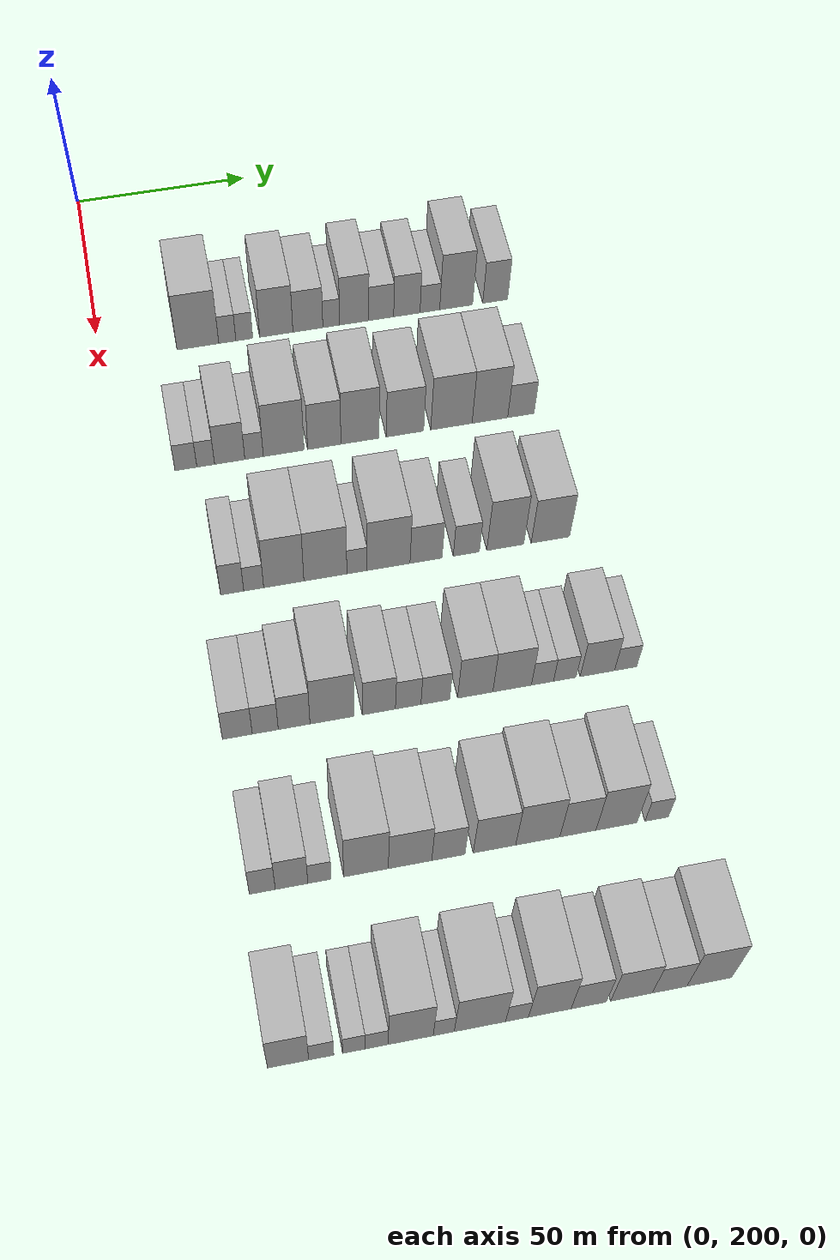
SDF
<sdf version="1.6">
 <world name="default">
  <model name="building_102">
   <static>1</static>
   <pose>50.0000 227.7388 0 0.000000 0.000000 0.000000</pose>
   <link name="link">
    <pose>0 0 12.00 0 0 0</pose>
    <collision name="collision"><geometry><box><size>20.0000 11.8908 24.0000</size></box></geometry></collision>
    <visual name="visual">
     <cast_shadows>0</cast_shadows>
     <geometry><box><size>20.0000 11.8908 24.0000</size></box></geometry>
     <material>
      <script>
       <uri>model://HANNAS_wall/materials/scripts</uri>
       <uri>model://HANNAS_wall/materials/textures</uri>
       <name>vrc/HANNAS_wall</name>
      </script>
     </material>
    </visual>
   </link>
  </model>
  <model name="building_103">
   <static>1</static>
   <pose>50.0000 236.1212 0 0.000000 0.000000 0.000000</pose>
   <link name="link">
    <pose>0 0 6.00 0 0 0</pose>
    <collision name="collision"><geometry><box><size>20.0000 4.8740 12.0000</size></box></geometry></collision>
    <visual name="visual">
     <cast_shadows>0</cast_shadows>
     <geometry><box><size>20.0000 4.8740 12.0000</size></box></geometry>
     <material>
      <script>
       <uri>model://HANNAS_wall/materials/scripts</uri>
       <uri>model://HANNAS_wall/materials/textures</uri>
       <name>vrc/HANNAS_wall</name>
      </script>
     </material>
    </visual>
   </link>
  </model>
  <model name="building_104">
   <static>1</static>
   <pose>50.0000 240.9679 0 0.000000 0.000000 0.000000</pose>
   <link name="link">
    <pose>0 0 6.00 0 0 0</pose>
    <collision name="collision"><geometry><box><size>20.0000 4.8193 12.0000</size></box></geometry></collision>
    <visual name="visual">
     <cast_shadows>0</cast_shadows>
     <geometry><box><size>20.0000 4.8193 12.0000</size></box></geometry>
     <material>
      <script>
       <uri>model://HANNAS_wall/materials/scripts</uri>
       <uri>model://HANNAS_wall/materials/textures</uri>
       <name>vrc/HANNAS_wall</name>
      </script>
     </material>
    </visual>
   </link>
  </model>
  <model name="building_105">
   <static>1</static>
   <pose>50.0000 250.1380 0 0.000000 0.000000 0.000000</pose>
   <link name="link">
    <pose>0 0 10.50 0 0 0</pose>
    <collision name="collision"><geometry><box><size>20.0000 9.5209 21.0000</size></box></geometry></collision>
    <visual name="visual">
     <cast_shadows>0</cast_shadows>
     <geometry><box><size>20.0000 9.5209 21.0000</size></box></geometry>
     <material>
      <script>
       <uri>model://HANNAS_wall/materials/scripts</uri>
       <uri>model://HANNAS_wall/materials/textures</uri>
       <name>vrc/HANNAS_wall</name>
      </script>
     </material>
    </visual>
   </link>
  </model>
  <model name="building_106">
   <static>1</static>
   <pose>50.0000 259.2080 0 0.000000 0.000000 0.000000</pose>
   <link name="link">
    <pose>0 0 9.00 0 0 0</pose>
    <collision name="collision"><geometry><box><size>20.0000 8.6191 18.0000</size></box></geometry></collision>
    <visual name="visual">
     <cast_shadows>0</cast_shadows>
     <geometry><box><size>20.0000 8.6191 18.0000</size></box></geometry>
     <material>
      <script>
       <uri>model://HANNAS_wall/materials/scripts</uri>
       <uri>model://HANNAS_wall/materials/textures</uri>
       <name>vrc/HANNAS_wall</name>
      </script>
     </material>
    </visual>
   </link>
  </model>
  <model name="building_107">
   <static>1</static>
   <pose>50.0000 265.9286 0 0.000000 0.000000 0.000000</pose>
   <link name="link">
    <pose>0 0 6.00 0 0 0</pose>
    <collision name="collision"><geometry><box><size>20.0000 4.8221 12.0000</size></box></geometry></collision>
    <visual name="visual">
     <cast_shadows>0</cast_shadows>
     <geometry><box><size>20.0000 4.8221 12.0000</size></box></geometry>
     <material>
      <script>
       <uri>model://HANNAS_wall/materials/scripts</uri>
       <uri>model://HANNAS_wall/materials/textures</uri>
       <name>vrc/HANNAS_wall</name>
      </script>
     </material>
    </visual>
   </link>
  </model>
  <model name="building_108">
   <static>1</static>
   <pose>50.0000 272.5588 0 0.000000 0.000000 0.000000</pose>
   <link name="link">
    <pose>0 0 10.50 0 0 0</pose>
    <collision name="collision"><geometry><box><size>20.0000 8.4382 21.0000</size></box></geometry></collision>
    <visual name="visual">
     <cast_shadows>0</cast_shadows>
     <geometry><box><size>20.0000 8.4382 21.0000</size></box></geometry>
     <material>
      <script>
       <uri>model://HANNAS_wall/materials/scripts</uri>
       <uri>model://HANNAS_wall/materials/textures</uri>
       <name>vrc/HANNAS_wall</name>
      </script>
     </material>
    </visual>
   </link>
  </model>
  <model name="building_109">
   <static>1</static>
   <pose>50.0000 280.4043 0 0.000000 0.000000 0.000000</pose>
   <link name="link">
    <pose>0 0 7.50 0 0 0</pose>
    <collision name="collision"><geometry><box><size>20.0000 7.2528 15.0000</size></box></geometry></collision>
    <visual name="visual">
     <cast_shadows>0</cast_shadows>
     <geometry><box><size>20.0000 7.2528 15.0000</size></box></geometry>
     <material>
      <script>
       <uri>model://HANNAS_wall/materials/scripts</uri>
       <uri>model://HANNAS_wall/materials/textures</uri>
       <name>vrc/HANNAS_wall</name>
      </script>
     </material>
    </visual>
   </link>
  </model>
  <model name="building_110">
   <static>1</static>
   <pose>50.0000 287.8739 0 0.000000 0.000000 0.000000</pose>
   <link name="link">
    <pose>0 0 9.00 0 0 0</pose>
    <collision name="collision"><geometry><box><size>20.0000 7.6863 18.0000</size></box></geometry></collision>
    <visual name="visual">
     <cast_shadows>0</cast_shadows>
     <geometry><box><size>20.0000 7.6863 18.0000</size></box></geometry>
     <material>
      <script>
       <uri>model://HANNAS_wall/materials/scripts</uri>
       <uri>model://HANNAS_wall/materials/textures</uri>
       <name>vrc/HANNAS_wall</name>
      </script>
     </material>
    </visual>
   </link>
  </model>
  <model name="building_111">
   <static>1</static>
   <pose>50.0000 294.5927 0 0.000000 0.000000 0.000000</pose>
   <link name="link">
    <pose>0 0 6.00 0 0 0</pose>
    <collision name="collision"><geometry><box><size>20.0000 5.7514 12.0000</size></box></geometry></collision>
    <visual name="visual">
     <cast_shadows>0</cast_shadows>
     <geometry><box><size>20.0000 5.7514 12.0000</size></box></geometry>
     <material>
      <script>
       <uri>model://HANNAS_wall/materials/scripts</uri>
       <uri>model://HANNAS_wall/materials/textures</uri>
       <name>vrc/HANNAS_wall</name>
      </script>
     </material>
    </visual>
   </link>
  </model>
  <model name="building_112">
   <static>1</static>
   <pose>50.0000 302.2845 0 0.000000 0.000000 0.000000</pose>
   <link name="link">
    <pose>0 0 12.00 0 0 0</pose>
    <collision name="collision"><geometry><box><size>20.0000 9.6322 24.0000</size></box></geometry></collision>
    <visual name="visual">
     <cast_shadows>0</cast_shadows>
     <geometry><box><size>20.0000 9.6322 24.0000</size></box></geometry>
     <material>
      <script>
       <uri>model://HANNAS_wall/materials/scripts</uri>
       <uri>model://HANNAS_wall/materials/textures</uri>
       <name>vrc/HANNAS_wall</name>
      </script>
     </material>
    </visual>
   </link>
  </model>
  <model name="building_113">
   <static>1</static>
   <pose>50.0000 313.7432 0 0.000000 0.000000 0.000000</pose>
   <link name="link">
    <pose>0 0 9.00 0 0 0</pose>
    <collision name="collision"><geometry><box><size>20.0000 7.2851 18.0000</size></box></geometry></collision>
    <visual name="visual">
     <cast_shadows>0</cast_shadows>
     <geometry><box><size>20.0000 7.2851 18.0000</size></box></geometry>
     <material>
      <script>
       <uri>model://HANNAS_wall/materials/scripts</uri>
       <uri>model://HANNAS_wall/materials/textures</uri>
       <name>vrc/HANNAS_wall</name>
      </script>
     </material>
    </visual>
   </link>
  </model>
  <model name="building_233">
   <static>1</static>
   <pose>90.0000 218.8565 0 0.000000 0.000000 0.000000</pose>
   <link name="link">
    <pose>0 0 6.00 0 0 0</pose>
    <collision name="collision"><geometry><box><size>20.0000 5.9490 12.0000</size></box></geometry></collision>
    <visual name="visual">
     <cast_shadows>0</cast_shadows>
     <geometry><box><size>20.0000 5.9490 12.0000</size></box></geometry>
     <material>
      <script>
       <uri>model://HANNAS_wall/materials/scripts</uri>
       <uri>model://HANNAS_wall/materials/textures</uri>
       <name>vrc/HANNAS_wall</name>
      </script>
     </material>
    </visual>
   </link>
  </model>
  <model name="building_234">
   <static>1</static>
   <pose>90.0000 224.2488 0 0.000000 0.000000 0.000000</pose>
   <link name="link">
    <pose>0 0 6.00 0 0 0</pose>
    <collision name="collision"><geometry><box><size>20.0000 4.8356 12.0000</size></box></geometry></collision>
    <visual name="visual">
     <cast_shadows>0</cast_shadows>
     <geometry><box><size>20.0000 4.8356 12.0000</size></box></geometry>
     <material>
      <script>
       <uri>model://HANNAS_wall/materials/scripts</uri>
       <uri>model://HANNAS_wall/materials/textures</uri>
       <name>vrc/HANNAS_wall</name>
      </script>
     </material>
    </visual>
   </link>
  </model>
  <model name="building_235">
   <static>1</static>
   <pose>90.0000 230.7939 0 0.000000 0.000000 0.000000</pose>
   <link name="link">
    <pose>0 0 9.00 0 0 0</pose>
    <collision name="collision"><geometry><box><size>20.0000 8.2546 18.0000</size></box></geometry></collision>
    <visual name="visual">
     <cast_shadows>0</cast_shadows>
     <geometry><box><size>20.0000 8.2546 18.0000</size></box></geometry>
     <material>
      <script>
       <uri>model://HANNAS_wall/materials/scripts</uri>
       <uri>model://HANNAS_wall/materials/textures</uri>
       <name>vrc/HANNAS_wall</name>
      </script>
     </material>
    </visual>
   </link>
  </model>
  <model name="building_236">
   <static>1</static>
   <pose>90.0000 237.4488 0 0.000000 0.000000 0.000000</pose>
   <link name="link">
    <pose>0 0 6.00 0 0 0</pose>
    <collision name="collision"><geometry><box><size>20.0000 5.0550 12.0000</size></box></geometry></collision>
    <visual name="visual">
     <cast_shadows>0</cast_shadows>
     <geometry><box><size>20.0000 5.0550 12.0000</size></box></geometry>
     <material>
      <script>
       <uri>model://HANNAS_wall/materials/scripts</uri>
       <uri>model://HANNAS_wall/materials/textures</uri>
       <name>vrc/HANNAS_wall</name>
      </script>
     </material>
    </visual>
   </link>
  </model>
  <model name="building_237">
   <static>1</static>
   <pose>90.0000 245.5639 0 0.000000 0.000000 0.000000</pose>
   <link name="link">
    <pose>0 0 12.00 0 0 0</pose>
    <collision name="collision"><geometry><box><size>20.0000 11.1753 24.0000</size></box></geometry></collision>
    <visual name="visual">
     <cast_shadows>0</cast_shadows>
     <geometry><box><size>20.0000 11.1753 24.0000</size></box></geometry>
     <material>
      <script>
       <uri>model://HANNAS_wall/materials/scripts</uri>
       <uri>model://HANNAS_wall/materials/textures</uri>
       <name>vrc/HANNAS_wall</name>
      </script>
     </material>
    </visual>
   </link>
  </model>
  <model name="building_238">
   <static>1</static>
   <pose>90.0000 256.7486 0 0.000000 0.000000 0.000000</pose>
   <link name="link">
    <pose>0 0 10.50 0 0 0</pose>
    <collision name="collision"><geometry><box><size>20.0000 9.1940 21.0000</size></box></geometry></collision>
    <visual name="visual">
     <cast_shadows>0</cast_shadows>
     <geometry><box><size>20.0000 9.1940 21.0000</size></box></geometry>
     <material>
      <script>
       <uri>model://HANNAS_wall/materials/scripts</uri>
       <uri>model://HANNAS_wall/materials/textures</uri>
       <name>vrc/HANNAS_wall</name>
      </script>
     </material>
    </visual>
   </link>
  </model>
  <model name="building_239">
   <static>1</static>
   <pose>90.0000 266.6106 0 0.000000 0.000000 0.000000</pose>
   <link name="link">
    <pose>0 0 12.00 0 0 0</pose>
    <collision name="collision"><geometry><box><size>20.0000 10.5301 24.0000</size></box></geometry></collision>
    <visual name="visual">
     <cast_shadows>0</cast_shadows>
     <geometry><box><size>20.0000 10.5301 24.0000</size></box></geometry>
     <material>
      <script>
       <uri>model://HANNAS_wall/materials/scripts</uri>
       <uri>model://HANNAS_wall/materials/textures</uri>
       <name>vrc/HANNAS_wall</name>
      </script>
     </material>
    </visual>
   </link>
  </model>
  <model name="building_240">
   <static>1</static>
   <pose>90.0000 279.0998 0 0.000000 0.000000 0.000000</pose>
   <link name="link">
    <pose>0 0 10.50 0 0 0</pose>
    <collision name="collision"><geometry><box><size>20.0000 10.4482 21.0000</size></box></geometry></collision>
    <visual name="visual">
     <cast_shadows>0</cast_shadows>
     <geometry><box><size>20.0000 10.4482 21.0000</size></box></geometry>
     <material>
      <script>
       <uri>model://HANNAS_wall/materials/scripts</uri>
       <uri>model://HANNAS_wall/materials/textures</uri>
       <name>vrc/HANNAS_wall</name>
      </script>
     </material>
    </visual>
   </link>
  </model>
  <model name="building_241">
   <static>1</static>
   <pose>90.0000 292.1101 0 0.000000 0.000000 0.000000</pose>
   <link name="link">
    <pose>0 0 12.00 0 0 0</pose>
    <collision name="collision"><geometry><box><size>20.0000 11.5724 24.0000</size></box></geometry></collision>
    <visual name="visual">
     <cast_shadows>0</cast_shadows>
     <geometry><box><size>20.0000 11.5724 24.0000</size></box></geometry>
     <material>
      <script>
       <uri>model://HANNAS_wall/materials/scripts</uri>
       <uri>model://HANNAS_wall/materials/textures</uri>
       <name>vrc/HANNAS_wall</name>
      </script>
     </material>
    </visual>
   </link>
  </model>
  <model name="building_242">
   <static>1</static>
   <pose>90.0000 302.9137 0 0.000000 0.000000 0.000000</pose>
   <link name="link">
    <pose>0 0 12.00 0 0 0</pose>
    <collision name="collision"><geometry><box><size>20.0000 10.0347 24.0000</size></box></geometry></collision>
    <visual name="visual">
     <cast_shadows>0</cast_shadows>
     <geometry><box><size>20.0000 10.0347 24.0000</size></box></geometry>
     <material>
      <script>
       <uri>model://HANNAS_wall/materials/scripts</uri>
       <uri>model://HANNAS_wall/materials/textures</uri>
       <name>vrc/HANNAS_wall</name>
      </script>
     </material>
    </visual>
   </link>
  </model>
  <model name="building_243">
   <static>1</static>
   <pose>90.0000 311.6351 0 0.000000 0.000000 0.000000</pose>
   <link name="link">
    <pose>0 0 7.50 0 0 0</pose>
    <collision name="collision"><geometry><box><size>20.0000 7.4080 15.0000</size></box></geometry></collision>
    <visual name="visual">
     <cast_shadows>0</cast_shadows>
     <geometry><box><size>20.0000 7.4080 15.0000</size></box></geometry>
     <material>
      <script>
       <uri>model://HANNAS_wall/materials/scripts</uri>
       <uri>model://HANNAS_wall/materials/textures</uri>
       <name>vrc/HANNAS_wall</name>
      </script>
     </material>
    </visual>
   </link>
  </model>
  <model name="building_374">
   <static>1</static>
   <pose>130.0000 225.3985 0 0.000000 0.000000 0.000000</pose>
   <link name="link">
    <pose>0 0 7.50 0 0 0</pose>
    <collision name="collision"><geometry><box><size>20.0000 6.0371 15.0000</size></box></geometry></collision>
    <visual name="visual">
     <cast_shadows>0</cast_shadows>
     <geometry><box><size>20.0000 6.0371 15.0000</size></box></geometry>
     <material>
      <script>
       <uri>model://HANNAS_wall/materials/scripts</uri>
       <uri>model://HANNAS_wall/materials/textures</uri>
       <name>vrc/HANNAS_wall</name>
      </script>
     </material>
    </visual>
   </link>
  </model>
  <model name="building_375">
   <static>1</static>
   <pose>130.0000 231.0252 0 0.000000 0.000000 0.000000</pose>
   <link name="link">
    <pose>0 0 6.00 0 0 0</pose>
    <collision name="collision"><geometry><box><size>20.0000 5.2163 12.0000</size></box></geometry></collision>
    <visual name="visual">
     <cast_shadows>0</cast_shadows>
     <geometry><box><size>20.0000 5.2163 12.0000</size></box></geometry>
     <material>
      <script>
       <uri>model://HANNAS_wall/materials/scripts</uri>
       <uri>model://HANNAS_wall/materials/textures</uri>
       <name>vrc/HANNAS_wall</name>
      </script>
     </material>
    </visual>
   </link>
  </model>
  <model name="building_376">
   <static>1</static>
   <pose>130.0000 238.9048 0 0.000000 0.000000 0.000000</pose>
   <link name="link">
    <pose>0 0 12.00 0 0 0</pose>
    <collision name="collision"><geometry><box><size>20.0000 10.5429 24.0000</size></box></geometry></collision>
    <visual name="visual">
     <cast_shadows>0</cast_shadows>
     <geometry><box><size>20.0000 10.5429 24.0000</size></box></geometry>
     <material>
      <script>
       <uri>model://HANNAS_wall/materials/scripts</uri>
       <uri>model://HANNAS_wall/materials/textures</uri>
       <name>vrc/HANNAS_wall</name>
      </script>
     </material>
    </visual>
   </link>
  </model>
  <model name="building_377">
   <static>1</static>
   <pose>130.0000 249.8349 0 0.000000 0.000000 0.000000</pose>
   <link name="link">
    <pose>0 0 12.00 0 0 0</pose>
    <collision name="collision"><geometry><box><size>20.0000 11.3173 24.0000</size></box></geometry></collision>
    <visual name="visual">
     <cast_shadows>0</cast_shadows>
     <geometry><box><size>20.0000 11.3173 24.0000</size></box></geometry>
     <material>
      <script>
       <uri>model://HANNAS_wall/materials/scripts</uri>
       <uri>model://HANNAS_wall/materials/textures</uri>
       <name>vrc/HANNAS_wall</name>
      </script>
     </material>
    </visual>
   </link>
  </model>
  <model name="building_378">
   <static>1</static>
   <pose>130.0000 258.1542 0 0.000000 0.000000 0.000000</pose>
   <link name="link">
    <pose>0 0 6.00 0 0 0</pose>
    <collision name="collision"><geometry><box><size>20.0000 5.3213 12.0000</size></box></geometry></collision>
    <visual name="visual">
     <cast_shadows>0</cast_shadows>
     <geometry><box><size>20.0000 5.3213 12.0000</size></box></geometry>
     <material>
      <script>
       <uri>model://HANNAS_wall/materials/scripts</uri>
       <uri>model://HANNAS_wall/materials/textures</uri>
       <name>vrc/HANNAS_wall</name>
      </script>
     </material>
    </visual>
   </link>
  </model>
  <model name="building_379">
   <static>1</static>
   <pose>130.0000 266.5314 0 0.000000 0.000000 0.000000</pose>
   <link name="link">
    <pose>0 0 12.00 0 0 0</pose>
    <collision name="collision"><geometry><box><size>20.0000 11.4332 24.0000</size></box></geometry></collision>
    <visual name="visual">
     <cast_shadows>0</cast_shadows>
     <geometry><box><size>20.0000 11.4332 24.0000</size></box></geometry>
     <material>
      <script>
       <uri>model://HANNAS_wall/materials/scripts</uri>
       <uri>model://HANNAS_wall/materials/textures</uri>
       <name>vrc/HANNAS_wall</name>
      </script>
     </material>
    </visual>
   </link>
  </model>
  <model name="building_380">
   <static>1</static>
   <pose>130.0000 276.5206 0 0.000000 0.000000 0.000000</pose>
   <link name="link">
    <pose>0 0 9.00 0 0 0</pose>
    <collision name="collision"><geometry><box><size>20.0000 8.5450 18.0000</size></box></geometry></collision>
    <visual name="visual">
     <cast_shadows>0</cast_shadows>
     <geometry><box><size>20.0000 8.5450 18.0000</size></box></geometry>
     <material>
      <script>
       <uri>model://HANNAS_wall/materials/scripts</uri>
       <uri>model://HANNAS_wall/materials/textures</uri>
       <name>vrc/HANNAS_wall</name>
      </script>
     </material>
    </visual>
   </link>
  </model>
  <model name="building_381">
   <static>1</static>
   <pose>130.0000 287.2927 0 0.000000 0.000000 0.000000</pose>
   <link name="link">
    <pose>0 0 7.50 0 0 0</pose>
    <collision name="collision"><geometry><box><size>20.0000 6.9993 15.0000</size></box></geometry></collision>
    <visual name="visual">
     <cast_shadows>0</cast_shadows>
     <geometry><box><size>20.0000 6.9993 15.0000</size></box></geometry>
     <material>
      <script>
       <uri>model://HANNAS_wall/materials/scripts</uri>
       <uri>model://HANNAS_wall/materials/textures</uri>
       <name>vrc/HANNAS_wall</name>
      </script>
     </material>
    </visual>
   </link>
  </model>
  <model name="building_382">
   <static>1</static>
   <pose>130.0000 297.7633 0 0.000000 0.000000 0.000000</pose>
   <link name="link">
    <pose>0 0 12.00 0 0 0</pose>
    <collision name="collision"><geometry><box><size>20.0000 9.9420 24.0000</size></box></geometry></collision>
    <visual name="visual">
     <cast_shadows>0</cast_shadows>
     <geometry><box><size>20.0000 9.9420 24.0000</size></box></geometry>
     <material>
      <script>
       <uri>model://HANNAS_wall/materials/scripts</uri>
       <uri>model://HANNAS_wall/materials/textures</uri>
       <name>vrc/HANNAS_wall</name>
      </script>
     </material>
    </visual>
   </link>
  </model>
  <model name="building_383">
   <static>1</static>
   <pose>130.0000 309.9293 0 0.000000 0.000000 0.000000</pose>
   <link name="link">
    <pose>0 0 10.50 0 0 0</pose>
    <collision name="collision"><geometry><box><size>20.0000 10.3899 21.0000</size></box></geometry></collision>
    <visual name="visual">
     <cast_shadows>0</cast_shadows>
     <geometry><box><size>20.0000 10.3899 21.0000</size></box></geometry>
     <material>
      <script>
       <uri>model://HANNAS_wall/materials/scripts</uri>
       <uri>model://HANNAS_wall/materials/textures</uri>
       <name>vrc/HANNAS_wall</name>
      </script>
     </material>
    </visual>
   </link>
  </model>
  <model name="building_513">
   <static>1</static>
   <pose>170.0000 220.6503 0 0.000000 0.000000 0.000000</pose>
   <link name="link">
    <pose>0 0 7.50 0 0 0</pose>
    <collision name="collision"><geometry><box><size>20.0000 7.4196 15.0000</size></box></geometry></collision>
    <visual name="visual">
     <cast_shadows>0</cast_shadows>
     <geometry><box><size>20.0000 7.4196 15.0000</size></box></geometry>
     <material>
      <script>
       <uri>model://HANNAS_wall/materials/scripts</uri>
       <uri>model://HANNAS_wall/materials/textures</uri>
       <name>vrc/HANNAS_wall</name>
      </script>
     </material>
    </visual>
   </link>
  </model>
  <model name="building_514">
   <static>1</static>
   <pose>170.0000 227.5997 0 0.000000 0.000000 0.000000</pose>
   <link name="link">
    <pose>0 0 7.50 0 0 0</pose>
    <collision name="collision"><geometry><box><size>20.0000 6.4792 15.0000</size></box></geometry></collision>
    <visual name="visual">
     <cast_shadows>0</cast_shadows>
     <geometry><box><size>20.0000 6.4792 15.0000</size></box></geometry>
     <material>
      <script>
       <uri>model://HANNAS_wall/materials/scripts</uri>
       <uri>model://HANNAS_wall/materials/textures</uri>
       <name>vrc/HANNAS_wall</name>
      </script>
     </material>
    </visual>
   </link>
  </model>
  <model name="building_515">
   <static>1</static>
   <pose>170.0000 234.8023 0 0.000000 0.000000 0.000000</pose>
   <link name="link">
    <pose>0 0 9.00 0 0 0</pose>
    <collision name="collision"><geometry><box><size>20.0000 7.9261 18.0000</size></box></geometry></collision>
    <visual name="visual">
     <cast_shadows>0</cast_shadows>
     <geometry><box><size>20.0000 7.9261 18.0000</size></box></geometry>
     <material>
      <script>
       <uri>model://HANNAS_wall/materials/scripts</uri>
       <uri>model://HANNAS_wall/materials/textures</uri>
       <name>vrc/HANNAS_wall</name>
      </script>
     </material>
    </visual>
   </link>
  </model>
  <model name="building_516">
   <static>1</static>
   <pose>170.0000 244.3344 0 0.000000 0.000000 0.000000</pose>
   <link name="link">
    <pose>0 0 12.00 0 0 0</pose>
    <collision name="collision"><geometry><box><size>20.0000 11.1380 24.0000</size></box></geometry></collision>
    <visual name="visual">
     <cast_shadows>0</cast_shadows>
     <geometry><box><size>20.0000 11.1380 24.0000</size></box></geometry>
     <material>
      <script>
       <uri>model://HANNAS_wall/materials/scripts</uri>
       <uri>model://HANNAS_wall/materials/textures</uri>
       <name>vrc/HANNAS_wall</name>
      </script>
     </material>
    </visual>
   </link>
  </model>
  <model name="building_517">
   <static>1</static>
   <pose>170.0000 256.0898 0 0.000000 0.000000 0.000000</pose>
   <link name="link">
    <pose>0 0 9.00 0 0 0</pose>
    <collision name="collision"><geometry><box><size>20.0000 8.3729 18.0000</size></box></geometry></collision>
    <visual name="visual">
     <cast_shadows>0</cast_shadows>
     <geometry><box><size>20.0000 8.3729 18.0000</size></box></geometry>
     <material>
      <script>
       <uri>model://HANNAS_wall/materials/scripts</uri>
       <uri>model://HANNAS_wall/materials/textures</uri>
       <name>vrc/HANNAS_wall</name>
      </script>
     </material>
    </visual>
   </link>
  </model>
  <model name="building_518">
   <static>1</static>
   <pose>170.0000 263.5122 0 0.000000 0.000000 0.000000</pose>
   <link name="link">
    <pose>0 0 7.50 0 0 0</pose>
    <collision name="collision"><geometry><box><size>20.0000 6.4719 15.0000</size></box></geometry></collision>
    <visual name="visual">
     <cast_shadows>0</cast_shadows>
     <geometry><box><size>20.0000 6.4719 15.0000</size></box></geometry>
     <material>
      <script>
       <uri>model://HANNAS_wall/materials/scripts</uri>
       <uri>model://HANNAS_wall/materials/textures</uri>
       <name>vrc/HANNAS_wall</name>
      </script>
     </material>
    </visual>
   </link>
  </model>
  <model name="building_519">
   <static>1</static>
   <pose>170.0000 270.4138 0 0.000000 0.000000 0.000000</pose>
   <link name="link">
    <pose>0 0 7.50 0 0 0</pose>
    <collision name="collision"><geometry><box><size>20.0000 7.3312 15.0000</size></box></geometry></collision>
    <visual name="visual">
     <cast_shadows>0</cast_shadows>
     <geometry><box><size>20.0000 7.3312 15.0000</size></box></geometry>
     <material>
      <script>
       <uri>model://HANNAS_wall/materials/scripts</uri>
       <uri>model://HANNAS_wall/materials/textures</uri>
       <name>vrc/HANNAS_wall</name>
      </script>
     </material>
    </visual>
   </link>
  </model>
  <model name="building_520">
   <static>1</static>
   <pose>170.0000 280.5822 0 0.000000 0.000000 0.000000</pose>
   <link name="link">
    <pose>0 0 10.50 0 0 0</pose>
    <collision name="collision"><geometry><box><size>20.0000 9.0055 21.0000</size></box></geometry></collision>
    <visual name="visual">
     <cast_shadows>0</cast_shadows>
     <geometry><box><size>20.0000 9.0055 21.0000</size></box></geometry>
     <material>
      <script>
       <uri>model://HANNAS_wall/materials/scripts</uri>
       <uri>model://HANNAS_wall/materials/textures</uri>
       <name>vrc/HANNAS_wall</name>
      </script>
     </material>
    </visual>
   </link>
  </model>
  <model name="building_521">
   <static>1</static>
   <pose>170.0000 290.0351 0 0.000000 0.000000 0.000000</pose>
   <link name="link">
    <pose>0 0 10.50 0 0 0</pose>
    <collision name="collision"><geometry><box><size>20.0000 9.9004 21.0000</size></box></geometry></collision>
    <visual name="visual">
     <cast_shadows>0</cast_shadows>
     <geometry><box><size>20.0000 9.9004 21.0000</size></box></geometry>
     <material>
      <script>
       <uri>model://HANNAS_wall/materials/scripts</uri>
       <uri>model://HANNAS_wall/materials/textures</uri>
       <name>vrc/HANNAS_wall</name>
      </script>
     </material>
    </visual>
   </link>
  </model>
  <model name="building_522">
   <static>1</static>
   <pose>170.0000 297.8342 0 0.000000 0.000000 0.000000</pose>
   <link name="link">
    <pose>0 0 6.00 0 0 0</pose>
    <collision name="collision"><geometry><box><size>20.0000 5.6978 12.0000</size></box></geometry></collision>
    <visual name="visual">
     <cast_shadows>0</cast_shadows>
     <geometry><box><size>20.0000 5.6978 12.0000</size></box></geometry>
     <material>
      <script>
       <uri>model://HANNAS_wall/materials/scripts</uri>
       <uri>model://HANNAS_wall/materials/textures</uri>
       <name>vrc/HANNAS_wall</name>
      </script>
     </material>
    </visual>
   </link>
  </model>
  <model name="building_523">
   <static>1</static>
   <pose>170.0000 303.6136 0 0.000000 0.000000 0.000000</pose>
   <link name="link">
    <pose>0 0 6.00 0 0 0</pose>
    <collision name="collision"><geometry><box><size>20.0000 5.8609 12.0000</size></box></geometry></collision>
    <visual name="visual">
     <cast_shadows>0</cast_shadows>
     <geometry><box><size>20.0000 5.8609 12.0000</size></box></geometry>
     <material>
      <script>
       <uri>model://HANNAS_wall/materials/scripts</uri>
       <uri>model://HANNAS_wall/materials/textures</uri>
       <name>vrc/HANNAS_wall</name>
      </script>
     </material>
    </visual>
   </link>
  </model>
  <model name="building_524">
   <static>1</static>
   <pose>170.0000 312.0189 0 0.000000 0.000000 0.000000</pose>
   <link name="link">
    <pose>0 0 9.00 0 0 0</pose>
    <collision name="collision"><geometry><box><size>20.0000 8.9497 18.0000</size></box></geometry></collision>
    <visual name="visual">
     <cast_shadows>0</cast_shadows>
     <geometry><box><size>20.0000 8.9497 18.0000</size></box></geometry>
     <material>
      <script>
       <uri>model://HANNAS_wall/materials/scripts</uri>
       <uri>model://HANNAS_wall/materials/textures</uri>
       <name>vrc/HANNAS_wall</name>
      </script>
     </material>
    </visual>
   </link>
  </model>
  <model name="building_525">
   <static>1</static>
   <pose>170.0000 319.3625 0 0.000000 0.000000 0.000000</pose>
   <link name="link">
    <pose>0 0 6.00 0 0 0</pose>
    <collision name="collision"><geometry><box><size>20.0000 5.7374 12.0000</size></box></geometry></collision>
    <visual name="visual">
     <cast_shadows>0</cast_shadows>
     <geometry><box><size>20.0000 5.7374 12.0000</size></box></geometry>
     <material>
      <script>
       <uri>model://HANNAS_wall/materials/scripts</uri>
       <uri>model://HANNAS_wall/materials/textures</uri>
       <name>vrc/HANNAS_wall</name>
      </script>
     </material>
    </visual>
   </link>
  </model>
  <model name="building_658">
   <static>1</static>
   <pose>210.0000 220.4327 0 0.000000 0.000000 0.000000</pose>
   <link name="link">
    <pose>0 0 7.50 0 0 0</pose>
    <collision name="collision"><geometry><box><size>20.0000 6.1496 15.0000</size></box></geometry></collision>
    <visual name="visual">
     <cast_shadows>0</cast_shadows>
     <geometry><box><size>20.0000 6.1496 15.0000</size></box></geometry>
     <material>
      <script>
       <uri>model://HANNAS_wall/materials/scripts</uri>
       <uri>model://HANNAS_wall/materials/textures</uri>
       <name>vrc/HANNAS_wall</name>
      </script>
     </material>
    </visual>
   </link>
  </model>
  <model name="building_659">
   <static>1</static>
   <pose>210.0000 227.3709 0 0.000000 0.000000 0.000000</pose>
   <link name="link">
    <pose>0 0 9.00 0 0 0</pose>
    <collision name="collision"><geometry><box><size>20.0000 7.7268 18.0000</size></box></geometry></collision>
    <visual name="visual">
     <cast_shadows>0</cast_shadows>
     <geometry><box><size>20.0000 7.7268 18.0000</size></box></geometry>
     <material>
      <script>
       <uri>model://HANNAS_wall/materials/scripts</uri>
       <uri>model://HANNAS_wall/materials/textures</uri>
       <name>vrc/HANNAS_wall</name>
      </script>
     </material>
    </visual>
   </link>
  </model>
  <model name="building_660">
   <static>1</static>
   <pose>210.0000 234.0017 0 0.000000 0.000000 0.000000</pose>
   <link name="link">
    <pose>0 0 6.00 0 0 0</pose>
    <collision name="collision"><geometry><box><size>20.0000 5.5349 12.0000</size></box></geometry></collision>
    <visual name="visual">
     <cast_shadows>0</cast_shadows>
     <geometry><box><size>20.0000 5.5349 12.0000</size></box></geometry>
     <material>
      <script>
       <uri>model://HANNAS_wall/materials/scripts</uri>
       <uri>model://HANNAS_wall/materials/textures</uri>
       <name>vrc/HANNAS_wall</name>
      </script>
     </material>
    </visual>
   </link>
  </model>
  <model name="building_661">
   <static>1</static>
   <pose>210.0000 245.1144 0 0.000000 0.000000 0.000000</pose>
   <link name="link">
    <pose>0 0 12.00 0 0 0</pose>
    <collision name="collision"><geometry><box><size>20.0000 10.6904 24.0000</size></box></geometry></collision>
    <visual name="visual">
     <cast_shadows>0</cast_shadows>
     <geometry><box><size>20.0000 10.6904 24.0000</size></box></geometry>
     <material>
      <script>
       <uri>model://HANNAS_wall/materials/scripts</uri>
       <uri>model://HANNAS_wall/materials/textures</uri>
       <name>vrc/HANNAS_wall</name>
      </script>
     </material>
    </visual>
   </link>
  </model>
  <model name="building_662">
   <static>1</static>
   <pose>210.0000 255.7088 0 0.000000 0.000000 0.000000</pose>
   <link name="link">
    <pose>0 0 10.50 0 0 0</pose>
    <collision name="collision"><geometry><box><size>20.0000 10.4986 21.0000</size></box></geometry></collision>
    <visual name="visual">
     <cast_shadows>0</cast_shadows>
     <geometry><box><size>20.0000 10.4986 21.0000</size></box></geometry>
     <material>
      <script>
       <uri>model://HANNAS_wall/materials/scripts</uri>
       <uri>model://HANNAS_wall/materials/textures</uri>
       <name>vrc/HANNAS_wall</name>
      </script>
     </material>
    </visual>
   </link>
  </model>
  <model name="building_663">
   <static>1</static>
   <pose>210.0000 264.9689 0 0.000000 0.000000 0.000000</pose>
   <link name="link">
    <pose>0 0 9.00 0 0 0</pose>
    <collision name="collision"><geometry><box><size>20.0000 8.0215 18.0000</size></box></geometry></collision>
    <visual name="visual">
     <cast_shadows>0</cast_shadows>
     <geometry><box><size>20.0000 8.0215 18.0000</size></box></geometry>
     <material>
      <script>
       <uri>model://HANNAS_wall/materials/scripts</uri>
       <uri>model://HANNAS_wall/materials/textures</uri>
       <name>vrc/HANNAS_wall</name>
      </script>
     </material>
    </visual>
   </link>
  </model>
  <model name="building_664">
   <static>1</static>
   <pose>210.0000 276.1577 0 0.000000 0.000000 0.000000</pose>
   <link name="link">
    <pose>0 0 10.50 0 0 0</pose>
    <collision name="collision"><geometry><box><size>20.0000 10.3560 21.0000</size></box></geometry></collision>
    <visual name="visual">
     <cast_shadows>0</cast_shadows>
     <geometry><box><size>20.0000 10.3560 21.0000</size></box></geometry>
     <material>
      <script>
       <uri>model://HANNAS_wall/materials/scripts</uri>
       <uri>model://HANNAS_wall/materials/textures</uri>
       <name>vrc/HANNAS_wall</name>
      </script>
     </material>
    </visual>
   </link>
  </model>
  <model name="building_665">
   <static>1</static>
   <pose>210.0000 286.7358 0 0.000000 0.000000 0.000000</pose>
   <link name="link">
    <pose>0 0 12.00 0 0 0</pose>
    <collision name="collision"><geometry><box><size>20.0000 10.8002 24.0000</size></box></geometry></collision>
    <visual name="visual">
     <cast_shadows>0</cast_shadows>
     <geometry><box><size>20.0000 10.8002 24.0000</size></box></geometry>
     <material>
      <script>
       <uri>model://HANNAS_wall/materials/scripts</uri>
       <uri>model://HANNAS_wall/materials/textures</uri>
       <name>vrc/HANNAS_wall</name>
      </script>
     </material>
    </visual>
   </link>
  </model>
  <model name="building_666">
   <static>1</static>
   <pose>210.0000 296.5605 0 0.000000 0.000000 0.000000</pose>
   <link name="link">
    <pose>0 0 10.50 0 0 0</pose>
    <collision name="collision"><geometry><box><size>20.0000 8.8491 21.0000</size></box></geometry></collision>
    <visual name="visual">
     <cast_shadows>0</cast_shadows>
     <geometry><box><size>20.0000 8.8491 21.0000</size></box></geometry>
     <material>
      <script>
       <uri>model://HANNAS_wall/materials/scripts</uri>
       <uri>model://HANNAS_wall/materials/textures</uri>
       <name>vrc/HANNAS_wall</name>
      </script>
     </material>
    </visual>
   </link>
  </model>
  <model name="building_667">
   <static>1</static>
   <pose>210.0000 306.0486 0 0.000000 0.000000 0.000000</pose>
   <link name="link">
    <pose>0 0 12.00 0 0 0</pose>
    <collision name="collision"><geometry><box><size>20.0000 10.1272 24.0000</size></box></geometry></collision>
    <visual name="visual">
     <cast_shadows>0</cast_shadows>
     <geometry><box><size>20.0000 10.1272 24.0000</size></box></geometry>
     <material>
      <script>
       <uri>model://HANNAS_wall/materials/scripts</uri>
       <uri>model://HANNAS_wall/materials/textures</uri>
       <name>vrc/HANNAS_wall</name>
      </script>
     </material>
    </visual>
   </link>
  </model>
  <model name="building_668">
   <static>1</static>
   <pose>210.0000 316.0102 0 0.000000 0.000000 0.000000</pose>
   <link name="link">
    <pose>0 0 6.00 0 0 0</pose>
    <collision name="collision"><geometry><box><size>20.0000 5.7960 12.0000</size></box></geometry></collision>
    <visual name="visual">
     <cast_shadows>0</cast_shadows>
     <geometry><box><size>20.0000 5.7960 12.0000</size></box></geometry>
     <material>
      <script>
       <uri>model://HANNAS_wall/materials/scripts</uri>
       <uri>model://HANNAS_wall/materials/textures</uri>
       <name>vrc/HANNAS_wall</name>
      </script>
     </material>
    </visual>
   </link>
  </model>
  <model name="building_796">
   <static>1</static>
   <pose>250.0000 219.8141 0 0.000000 0.000000 0.000000</pose>
   <link name="link">
    <pose>0 0 10.50 0 0 0</pose>
    <collision name="collision"><geometry><box><size>20.0000 9.2911 21.0000</size></box></geometry></collision>
    <visual name="visual">
     <cast_shadows>0</cast_shadows>
     <geometry><box><size>20.0000 9.2911 21.0000</size></box></geometry>
     <material>
      <script>
       <uri>model://HANNAS_wall/materials/scripts</uri>
       <uri>model://HANNAS_wall/materials/textures</uri>
       <name>vrc/HANNAS_wall</name>
      </script>
     </material>
    </visual>
   </link>
  </model>
  <model name="building_797">
   <static>1</static>
   <pose>250.0000 227.2864 0 0.000000 0.000000 0.000000</pose>
   <link name="link">
    <pose>0 0 6.00 0 0 0</pose>
    <collision name="collision"><geometry><box><size>20.0000 5.6536 12.0000</size></box></geometry></collision>
    <visual name="visual">
     <cast_shadows>0</cast_shadows>
     <geometry><box><size>20.0000 5.6536 12.0000</size></box></geometry>
     <material>
      <script>
       <uri>model://HANNAS_wall/materials/scripts</uri>
       <uri>model://HANNAS_wall/materials/textures</uri>
       <name>vrc/HANNAS_wall</name>
      </script>
     </material>
    </visual>
   </link>
  </model>
  <model name="building_798">
   <static>1</static>
   <pose>250.0000 234.6381 0 0.000000 0.000000 0.000000</pose>
   <link name="link">
    <pose>0 0 6.00 0 0 0</pose>
    <collision name="collision"><geometry><box><size>20.0000 5.0498 12.0000</size></box></geometry></collision>
    <visual name="visual">
     <cast_shadows>0</cast_shadows>
     <geometry><box><size>20.0000 5.0498 12.0000</size></box></geometry>
     <material>
      <script>
       <uri>model://HANNAS_wall/materials/scripts</uri>
       <uri>model://HANNAS_wall/materials/textures</uri>
       <name>vrc/HANNAS_wall</name>
      </script>
     </material>
    </visual>
   </link>
  </model>
  <model name="building_799">
   <static>1</static>
   <pose>250.0000 239.7774 0 0.000000 0.000000 0.000000</pose>
   <link name="link">
    <pose>0 0 6.00 0 0 0</pose>
    <collision name="collision"><geometry><box><size>20.0000 5.2286 12.0000</size></box></geometry></collision>
    <visual name="visual">
     <cast_shadows>0</cast_shadows>
     <geometry><box><size>20.0000 5.2286 12.0000</size></box></geometry>
     <material>
      <script>
       <uri>model://HANNAS_wall/materials/scripts</uri>
       <uri>model://HANNAS_wall/materials/textures</uri>
       <name>vrc/HANNAS_wall</name>
      </script>
     </material>
    </visual>
   </link>
  </model>
  <model name="building_800">
   <static>1</static>
   <pose>250.0000 247.5629 0 0.000000 0.000000 0.000000</pose>
   <link name="link">
    <pose>0 0 12.00 0 0 0</pose>
    <collision name="collision"><geometry><box><size>20.0000 10.3425 24.0000</size></box></geometry></collision>
    <visual name="visual">
     <cast_shadows>0</cast_shadows>
     <geometry><box><size>20.0000 10.3425 24.0000</size></box></geometry>
     <material>
      <script>
       <uri>model://HANNAS_wall/materials/scripts</uri>
       <uri>model://HANNAS_wall/materials/textures</uri>
       <name>vrc/HANNAS_wall</name>
      </script>
     </material>
    </visual>
   </link>
  </model>
  <model name="building_801">
   <static>1</static>
   <pose>250.0000 255.1401 0 0.000000 0.000000 0.000000</pose>
   <link name="link">
    <pose>0 0 6.00 0 0 0</pose>
    <collision name="collision"><geometry><box><size>20.0000 4.8119 12.0000</size></box></geometry></collision>
    <visual name="visual">
     <cast_shadows>0</cast_shadows>
     <geometry><box><size>20.0000 4.8119 12.0000</size></box></geometry>
     <material>
      <script>
       <uri>model://HANNAS_wall/materials/scripts</uri>
       <uri>model://HANNAS_wall/materials/textures</uri>
       <name>vrc/HANNAS_wall</name>
      </script>
     </material>
    </visual>
   </link>
  </model>
  <model name="building_802">
   <static>1</static>
   <pose>250.0000 263.4659 0 0.000000 0.000000 0.000000</pose>
   <link name="link">
    <pose>0 0 12.00 0 0 0</pose>
    <collision name="collision"><geometry><box><size>20.0000 11.8397 24.0000</size></box></geometry></collision>
    <visual name="visual">
     <cast_shadows>0</cast_shadows>
     <geometry><box><size>20.0000 11.8397 24.0000</size></box></geometry>
     <material>
      <script>
       <uri>model://HANNAS_wall/materials/scripts</uri>
       <uri>model://HANNAS_wall/materials/textures</uri>
       <name>vrc/HANNAS_wall</name>
      </script>
     </material>
    </visual>
   </link>
  </model>
  <model name="building_803">
   <static>1</static>
   <pose>250.0000 272.0319 0 0.000000 0.000000 0.000000</pose>
   <link name="link">
    <pose>0 0 6.00 0 0 0</pose>
    <collision name="collision"><geometry><box><size>20.0000 5.2923 12.0000</size></box></geometry></collision>
    <visual name="visual">
     <cast_shadows>0</cast_shadows>
     <geometry><box><size>20.0000 5.2923 12.0000</size></box></geometry>
     <material>
      <script>
       <uri>model://HANNAS_wall/materials/scripts</uri>
       <uri>model://HANNAS_wall/materials/textures</uri>
       <name>vrc/HANNAS_wall</name>
      </script>
     </material>
    </visual>
   </link>
  </model>
  <model name="building_804">
   <static>1</static>
   <pose>250.0000 279.6186 0 0.000000 0.000000 0.000000</pose>
   <link name="link">
    <pose>0 0 12.00 0 0 0</pose>
    <collision name="collision"><geometry><box><size>20.0000 9.8811 24.0000</size></box></geometry></collision>
    <visual name="visual">
     <cast_shadows>0</cast_shadows>
     <geometry><box><size>20.0000 9.8811 24.0000</size></box></geometry>
     <material>
      <script>
       <uri>model://HANNAS_wall/materials/scripts</uri>
       <uri>model://HANNAS_wall/materials/textures</uri>
       <name>vrc/HANNAS_wall</name>
      </script>
     </material>
    </visual>
   </link>
  </model>
  <model name="building_805">
   <static>1</static>
   <pose>250.0000 288.6656 0 0.000000 0.000000 0.000000</pose>
   <link name="link">
    <pose>0 0 9.00 0 0 0</pose>
    <collision name="collision"><geometry><box><size>20.0000 8.2129 18.0000</size></box></geometry></collision>
    <visual name="visual">
     <cast_shadows>0</cast_shadows>
     <geometry><box><size>20.0000 8.2129 18.0000</size></box></geometry>
     <material>
      <script>
       <uri>model://HANNAS_wall/materials/scripts</uri>
       <uri>model://HANNAS_wall/materials/textures</uri>
       <name>vrc/HANNAS_wall</name>
      </script>
     </material>
    </visual>
   </link>
  </model>
  <model name="building_806">
   <static>1</static>
   <pose>250.0000 298.6610 0 0.000000 0.000000 0.000000</pose>
   <link name="link">
    <pose>0 0 10.50 0 0 0</pose>
    <collision name="collision"><geometry><box><size>20.0000 9.7780 21.0000</size></box></geometry></collision>
    <visual name="visual">
     <cast_shadows>0</cast_shadows>
     <geometry><box><size>20.0000 9.7780 21.0000</size></box></geometry>
     <material>
      <script>
       <uri>model://HANNAS_wall/materials/scripts</uri>
       <uri>model://HANNAS_wall/materials/textures</uri>
       <name>vrc/HANNAS_wall</name>
      </script>
     </material>
    </visual>
   </link>
  </model>
  <model name="building_807">
   <static>1</static>
   <pose>250.0000 307.6267 0 0.000000 0.000000 0.000000</pose>
   <link name="link">
    <pose>0 0 9.00 0 0 0</pose>
    <collision name="collision"><geometry><box><size>20.0000 8.1532 18.0000</size></box></geometry></collision>
    <visual name="visual">
     <cast_shadows>0</cast_shadows>
     <geometry><box><size>20.0000 8.1532 18.0000</size></box></geometry>
     <material>
      <script>
       <uri>model://HANNAS_wall/materials/scripts</uri>
       <uri>model://HANNAS_wall/materials/textures</uri>
       <name>vrc/HANNAS_wall</name>
      </script>
     </material>
    </visual>
   </link>
  </model>
  <model name="building_808">
   <static>1</static>
   <pose>250.0000 317.0057 0 0.000000 0.000000 0.000000</pose>
   <link name="link">
    <pose>0 0 12.00 0 0 0</pose>
    <collision name="collision"><geometry><box><size>20.0000 10.6047 24.0000</size></box></geometry></collision>
    <visual name="visual">
     <cast_shadows>0</cast_shadows>
     <geometry><box><size>20.0000 10.6047 24.0000</size></box></geometry>
     <material>
      <script>
       <uri>model://HANNAS_wall/materials/scripts</uri>
       <uri>model://HANNAS_wall/materials/textures</uri>
       <name>vrc/HANNAS_wall</name>
      </script>
     </material>
    </visual>
   </link>
  </model>
 </world>
</sdf>
